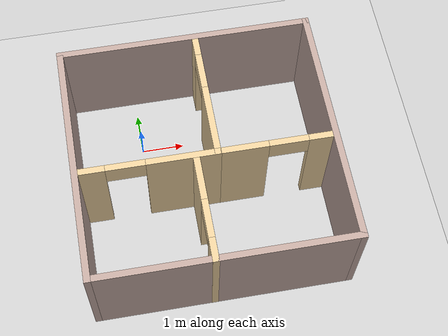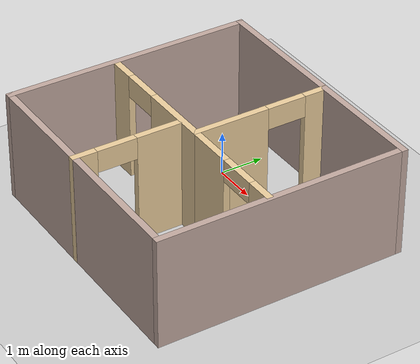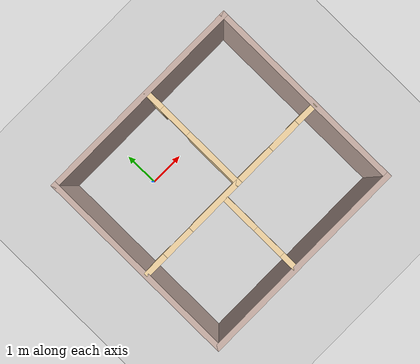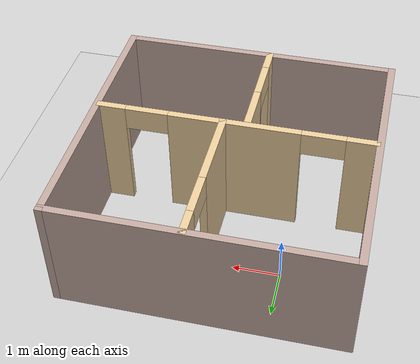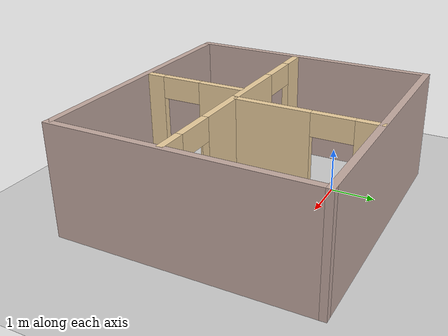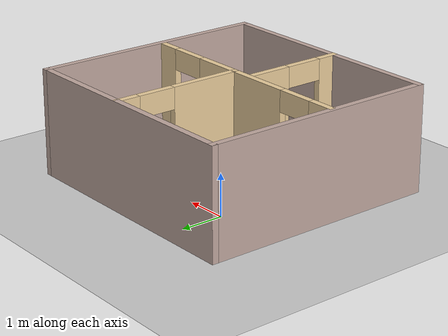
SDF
<sdf version="1.7">
 <world name="default">
  <light name="sun" type="directional">
   <pose>0 0 10 0 -0 0</pose>
   <diffuse>0.8 0.8 0.8 1</diffuse>
   <specular>0.2 0.2 0.2 1</specular>
   <attenuation>
    <range>1000</range>
    <constant>0.9</constant>
    <linear>0.01</linear>
    <quadratic>0.001</quadratic>
   </attenuation>
   <direction>-0.5 0.1 -0.9</direction>
   <spot><inner_angle>0</inner_angle><outer_angle>0</outer_angle><falloff>0</falloff></spot>
  </light>
  <model name="ground_plane">
   <static>1</static>
   <link name="link">
    <collision name="collision">
     <geometry><plane><normal>0 0 1</normal><size>100 100</size></plane></geometry>
     <surface><friction><ode><mu>100</mu><mu2>50</mu2></ode></friction></surface>
    </collision>
    <visual name="visual">
     <cast_shadows>0</cast_shadows>
     <geometry><plane><normal>0 0 1</normal><size>100 100</size></plane></geometry>
     <material>
      <script><uri>file://media/materials/scripts/gazebo.material</uri><name>Gazebo/Grey</name></script>
     </material>
    </visual>
   </link>
  </model>
  <gravity>0 0 -9.8</gravity>
  <magnetic_field>6e-06 2.3e-05 -4.2e-05</magnetic_field>
  <atmosphere type="adiabatic"/>
  <physics type="ode">
   <max_step_size>0.001</max_step_size>
   <real_time_factor>1</real_time_factor>
   <real_time_update_rate>1000</real_time_update_rate>
  </physics>
  <scene><ambient>0.4 0.4 0.4 1</ambient><background>0.7 0.7 0.7 1</background><shadows>1</shadows></scene>
  <audio><device>default</device></audio>
  <spherical_coordinates>
   <surface_model>EARTH_WGS84</surface_model>
   <latitude_deg>0</latitude_deg>
   <longitude_deg>0</longitude_deg>
   <elevation>0</elevation>
   <heading_deg>0</heading_deg>
  </spherical_coordinates>
  <model name="standard_world">
   <pose>1.31692 -1.31972 0 0 -0 0</pose>
   <link name="Wall_0">
    <collision name="Wall_0_Collision">
     <geometry><box><size>5.75 0.15 2.5</size></box></geometry>
     <pose>0 0 1.25 0 -0 0</pose>
    </collision>
    <visual name="Wall_0_Visual">
     <pose>0 0 1.25 0 -0 0</pose>
     <geometry><box><size>5.75 0.15 2.5</size></box></geometry>
     <material>
      <script><uri>file://media/materials/scripts/gazebo.material</uri><name>Gazebo/Grey</name></script>
      <ambient>0.760784 0.662745 0.627451 1</ambient>
     </material>
     <meta><layer>0</layer></meta>
    </visual>
    <pose>-2.925 0.001687 0 0 -0 -1.5708</pose>
   </link>
   <link name="Wall_1">
    <collision name="Wall_1_Collision">
     <geometry><box><size>6 0.15 2.5</size></box></geometry>
     <pose>0 0 1.25 0 -0 0</pose>
    </collision>
    <visual name="Wall_1_Visual">
     <pose>0 0 1.25 0 -0 0</pose>
     <geometry><box><size>6 0.15 2.5</size></box></geometry>
     <material>
      <script><uri>file://media/materials/scripts/gazebo.material</uri><name>Gazebo/Grey</name></script>
      <ambient>0.760784 0.662745 0.627451 1</ambient>
     </material>
     <meta><layer>0</layer></meta>
    </visual>
    <pose>-0 -2.79831 0 0 -0 0</pose>
   </link>
   <link name="Wall_10">
    <pose>-1.29612 -0.32017 0 0 -0 3.14159</pose>
    <visual name="Wall_10_Visual_0">
     <pose>-0.781679 0 1.25 0 -0 0</pose>
     <geometry><box><size>1.68664 0.15 2.5</size></box></geometry>
     <material>
      <script><uri>file://media/materials/scripts/gazebo.material</uri><name>Gazebo/Grey</name></script>
      <ambient>0.921569 0.807843 0.615686 1</ambient>
     </material>
     <meta><layer>0</layer></meta>
    </visual>
    <collision name="Wall_10_Collision_0">
     <geometry><box><size>1.68664 0.15 2.5</size></box></geometry>
     <pose>-0.781679 0 1.25 0 -0 0</pose>
    </collision>
    <visual name="Wall_10_Visual_1">
     <pose>1.29332 0 1.25 0 -0 0</pose>
     <geometry><box><size>0.663359 0.15 2.5</size></box></geometry>
     <material>
      <script><uri>file://media/materials/scripts/gazebo.material</uri><name>Gazebo/Grey</name></script>
      <ambient>0.921569 0.807843 0.615686 1</ambient>
     </material>
     <meta><layer>0</layer></meta>
    </visual>
    <collision name="Wall_10_Collision_1">
     <geometry><box><size>0.663359 0.15 2.5</size></box></geometry>
     <pose>1.29332 0 1.25 0 -0 0</pose>
    </collision>
    <visual name="Wall_10_Visual_2">
     <pose>0.511641 0 2.25 0 -0 0</pose>
     <geometry><box><size>0.9 0.15 0.5</size></box></geometry>
     <material>
      <script><uri>file://media/materials/scripts/gazebo.material</uri><name>Gazebo/Grey</name></script>
      <ambient>0.921569 0.807843 0.615686 1</ambient>
     </material>
     <meta><layer>0</layer></meta>
    </visual>
    <collision name="Wall_10_Collision_2">
     <geometry><box><size>0.9 0.15 0.5</size></box></geometry>
     <pose>0.511641 0 2.25 0 -0 0</pose>
    </collision>
   </link>
   <link name="Wall_12">
    <pose>1.55388 -0.32017 0 0 -0 0</pose>
    <visual name="Wall_12_Visual_0">
     <pose>-0.762986 0 1.25 0 -0 0</pose>
     <geometry><box><size>1.22403 0.15 2.5</size></box></geometry>
     <material>
      <script><uri>file://media/materials/scripts/gazebo.material</uri><name>Gazebo/Grey</name></script>
      <ambient>0.921569 0.807843 0.615686 1</ambient>
     </material>
     <meta><layer>0</layer></meta>
    </visual>
    <collision name="Wall_12_Collision_0">
     <geometry><box><size>1.22403 0.15 2.5</size></box></geometry>
     <pose>-0.762986 0 1.25 0 -0 0</pose>
    </collision>
    <visual name="Wall_12_Visual_1">
     <pose>1.06201 0 1.25 0 -0 0</pose>
     <geometry><box><size>0.625971 0.15 2.5</size></box></geometry>
     <material>
      <script><uri>file://media/materials/scripts/gazebo.material</uri><name>Gazebo/Grey</name></script>
      <ambient>0.921569 0.807843 0.615686 1</ambient>
     </material>
     <meta><layer>0</layer></meta>
    </visual>
    <collision name="Wall_12_Collision_1">
     <geometry><box><size>0.625971 0.15 2.5</size></box></geometry>
     <pose>1.06201 0 1.25 0 -0 0</pose>
    </collision>
    <visual name="Wall_12_Visual_2">
     <pose>0.299029 0 2.25 0 -0 0</pose>
     <geometry><box><size>0.9 0.15 0.5</size></box></geometry>
     <material>
      <script><uri>file://media/materials/scripts/gazebo.material</uri><name>Gazebo/Grey</name></script>
      <ambient>0.921569 0.807843 0.615686 1</ambient>
     </material>
     <meta><layer>0</layer></meta>
    </visual>
    <collision name="Wall_12_Collision_2">
     <geometry><box><size>0.9 0.15 0.5</size></box></geometry>
     <pose>0.299029 0 2.25 0 -0 0</pose>
    </collision>
   </link>
   <link name="Wall_14">
    <pose>-0.238904 -1.62669 0 0 -0 1.5708</pose>
    <visual name="Wall_14_Visual_0">
     <pose>-0.969859 0 1.25 0 -0 0</pose>
     <geometry><box><size>0.560281 0.15 2.5</size></box></geometry>
     <material>
      <script><uri>file://media/materials/scripts/gazebo.material</uri><name>Gazebo/Grey</name></script>
      <ambient>0.921569 0.807843 0.615686 1</ambient>
     </material>
     <meta><layer>0</layer></meta>
    </visual>
    <collision name="Wall_14_Collision_0">
     <geometry><box><size>0.560281 0.15 2.5</size></box></geometry>
     <pose>-0.969859 0 1.25 0 -0 0</pose>
    </collision>
    <visual name="Wall_14_Visual_1">
     <pose>0.730141 0 1.25 0 -0 0</pose>
     <geometry><box><size>1.03972 0.15 2.5</size></box></geometry>
     <material>
      <script><uri>file://media/materials/scripts/gazebo.material</uri><name>Gazebo/Grey</name></script>
      <ambient>0.921569 0.807843 0.615686 1</ambient>
     </material>
     <meta><layer>0</layer></meta>
    </visual>
    <collision name="Wall_14_Collision_1">
     <geometry><box><size>1.03972 0.15 2.5</size></box></geometry>
     <pose>0.730141 0 1.25 0 -0 0</pose>
    </collision>
    <visual name="Wall_14_Visual_2">
     <pose>-0.239719 0 2.25 0 -0 0</pose>
     <geometry><box><size>0.9 0.15 0.5</size></box></geometry>
     <material>
      <script><uri>file://media/materials/scripts/gazebo.material</uri><name>Gazebo/Grey</name></script>
      <ambient>0.921569 0.807843 0.615686 1</ambient>
     </material>
     <meta><layer>0</layer></meta>
    </visual>
    <collision name="Wall_14_Collision_2">
     <geometry><box><size>0.9 0.15 0.5</size></box></geometry>
     <pose>-0.239719 0 2.25 0 -0 0</pose>
    </collision>
   </link>
   <link name="Wall_6">
    <collision name="Wall_6_Collision">
     <geometry><box><size>5.75 0.15 2.5</size></box></geometry>
     <pose>0 0 1.25 0 -0 0</pose>
    </collision>
    <visual name="Wall_6_Visual">
     <pose>0 0 1.25 0 -0 0</pose>
     <geometry><box><size>5.75 0.15 2.5</size></box></geometry>
     <material>
      <script><uri>file://media/materials/scripts/gazebo.material</uri><name>Gazebo/Grey</name></script>
      <ambient>0.760784 0.662745 0.627451 1</ambient>
     </material>
     <meta><layer>0</layer></meta>
    </visual>
    <pose>2.925 0.001687 0 0 -0 1.5708</pose>
   </link>
   <link name="Wall_7">
    <collision name="Wall_7_Collision">
     <geometry><box><size>6 0.15 2.5</size></box></geometry>
     <pose>0 0 1.25 0 -0 0</pose>
    </collision>
    <visual name="Wall_7_Visual">
     <pose>0 0 1.25 0 -0 0</pose>
     <geometry><box><size>6 0.15 2.5</size></box></geometry>
     <material>
      <script><uri>file://media/materials/scripts/gazebo.material</uri><name>Gazebo/Grey</name></script>
      <ambient>0.760784 0.662745 0.627451 1</ambient>
     </material>
     <meta><layer>0</layer></meta>
    </visual>
    <pose>-0 2.80169 0 0 -0 3.14159</pose>
   </link>
   <link name="Wall_9">
    <pose>0.253879 1.22983 0 0 -0 -1.5708</pose>
    <visual name="Wall_9_Visual_0">
     <pose>-1.3348 0 1.25 0 -0 0</pose>
     <geometry><box><size>0.580395 0.15 2.5</size></box></geometry>
     <material>
      <script><uri>file://media/materials/scripts/gazebo.material</uri><name>Gazebo/Grey</name></script>
      <ambient>0.921569 0.807843 0.615686 1</ambient>
     </material>
     <meta><layer>0</layer></meta>
    </visual>
    <collision name="Wall_9_Collision_0">
     <geometry><box><size>0.580395 0.15 2.5</size></box></geometry>
     <pose>-1.3348 0 1.25 0 -0 0</pose>
    </collision>
    <visual name="Wall_9_Visual_1">
     <pose>0.740197 0 1.25 0 -0 0</pose>
     <geometry><box><size>1.76961 0.15 2.5</size></box></geometry>
     <material>
      <script><uri>file://media/materials/scripts/gazebo.material</uri><name>Gazebo/Grey</name></script>
      <ambient>0.921569 0.807843 0.615686 1</ambient>
     </material>
     <meta><layer>0</layer></meta>
    </visual>
    <collision name="Wall_9_Collision_1">
     <geometry><box><size>1.76961 0.15 2.5</size></box></geometry>
     <pose>0.740197 0 1.25 0 -0 0</pose>
    </collision>
    <visual name="Wall_9_Visual_2">
     <pose>-0.594605 0 2.25 0 -0 0</pose>
     <geometry><box><size>0.9 0.15 0.5</size></box></geometry>
     <material>
      <script><uri>file://media/materials/scripts/gazebo.material</uri><name>Gazebo/Grey</name></script>
      <ambient>0.921569 0.807843 0.615686 1</ambient>
     </material>
     <meta><layer>0</layer></meta>
    </visual>
    <collision name="Wall_9_Collision_2">
     <geometry><box><size>0.9 0.15 0.5</size></box></geometry>
     <pose>-0.594605 0 2.25 0 -0 0</pose>
    </collision>
   </link>
   <static>1</static>
  </model>
 </world>
</sdf>
